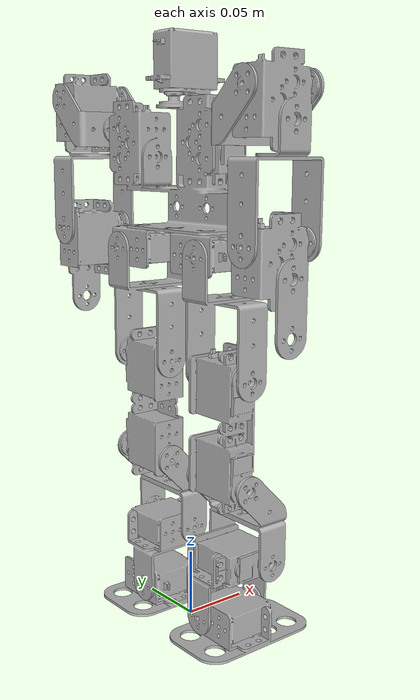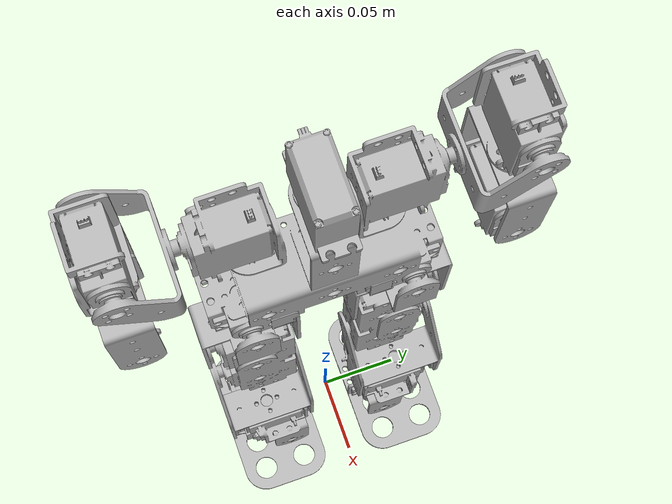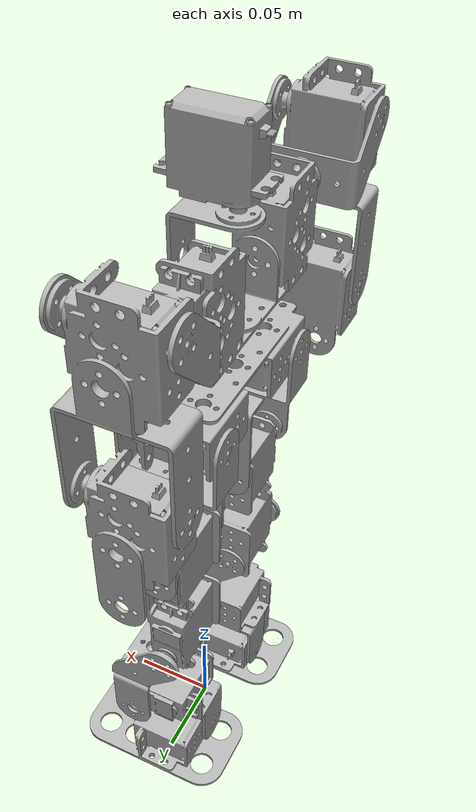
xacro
<?xml version="1.0" ?>
<robot name="humanoid" xmlns:xacro="http://www.ros.org/wiki/xacro">

<xacro:include filename="$(find humanoid_description)/urdf/materials.xacro" />
<xacro:include filename="$(find humanoid_description)/urdf/humanoid.trans" />
<xacro:include filename="$(find humanoid_description)/urdf/humanoid.gazebo" />
<link name="base_link">
  <inertial>
    <origin xyz="-0.012883479435964856 -0.0022883102773944906 0.3195103923670224" rpy="0 0 0"/>
    <mass value="0.49620714060674026"/>
    <inertia ixx="0.001376" iyy="0.000711" izz="0.000804" ixy="0.0" iyz="-0.0" ixz="6.9e-05"/>
  </inertial>
  <visual>
    <origin xyz="0 0 0" rpy="0 0 0"/>
    <geometry>
      <mesh filename="file://$(find humanoid_description)/meshes/base_link.stl" scale="0.001 0.001 0.001"/>
    </geometry>
    <material name="silver"/>
  </visual>
  <collision>
    <origin xyz="0 0 0" rpy="0 0 0"/>
    <geometry>
      <mesh filename="file://$(find humanoid_description)/meshes/base_link.stl" scale="0.001 0.001 0.001"/>
    </geometry>
  </collision>
</link>

<link name="L_hip_joint_1">
  <inertial>
    <origin xyz="0.02476294562748635 0.0007629287180515379 -0.03845870411401925" rpy="0 0 0"/>
    <mass value="0.043964600871803455"/>
    <inertia ixx="4.7e-05" iyy="4.3e-05" izz="2.7e-05" ixy="0.0" iyz="1e-06" ixz="-1e-06"/>
  </inertial>
  <visual>
    <origin xyz="0.03132 -0.041871 -0.280792" rpy="0 0 0"/>
    <geometry>
      <mesh filename="file://$(find humanoid_description)/meshes/L_hip_joint_1.stl" scale="0.001 0.001 0.001"/>
    </geometry>
    <material name="silver"/>
  </visual>
  <collision>
    <origin xyz="0.03132 -0.041871 -0.280792" rpy="0 0 0"/>
    <geometry>
      <mesh filename="file://$(find humanoid_description)/meshes/L_hip_joint_1.stl" scale="0.001 0.001 0.001"/>
    </geometry>
  </collision>
</link>

<link name="L_thigh_1">
  <inertial>
    <origin xyz="0.0020631851599692396 0.021610549494278094 -0.03835026650914522" rpy="0 0 0"/>
    <mass value="0.6278799138265152"/>
    <inertia ixx="0.00071" iyy="0.000648" izz="0.000122" ixy="1e-06" iyz="-0.0" ixz="0.0"/>
  </inertial>
  <visual>
    <origin xyz="0.00732 -0.017871 -0.197792" rpy="0 0 0"/>
    <geometry>
      <mesh filename="file://$(find humanoid_description)/meshes/L_thigh_1.stl" scale="0.001 0.001 0.001"/>
    </geometry>
    <material name="silver"/>
  </visual>
  <collision>
    <origin xyz="0.00732 -0.017871 -0.197792" rpy="0 0 0"/>
    <geometry>
      <mesh filename="file://$(find humanoid_description)/meshes/L_thigh_1.stl" scale="0.001 0.001 0.001"/>
    </geometry>
  </collision>
</link>

<link name="L_knee_1">
  <inertial>
    <origin xyz="0.01778979357133356 0.02573859555380659 -0.029178246058454205" rpy="0 0 0"/>
    <mass value="0.03721244648561897"/>
    <inertia ixx="3.4e-05" iyy="1.8e-05" izz="2.4e-05" ixy="0.0" iyz="0.0" ixz="4e-06"/>
  </inertial>
  <visual>
    <origin xyz="0.00732 -0.017871 -0.121009" rpy="0 0 0"/>
    <geometry>
      <mesh filename="file://$(find humanoid_description)/meshes/L_knee_1.stl" scale="0.001 0.001 0.001"/>
    </geometry>
    <material name="silver"/>
  </visual>
  <collision>
    <origin xyz="0.00732 -0.017871 -0.121009" rpy="0 0 0"/>
    <geometry>
      <mesh filename="file://$(find humanoid_description)/meshes/L_knee_1.stl" scale="0.001 0.001 0.001"/>
    </geometry>
  </collision>
</link>

<link name="L_ankle_pitch_1">
  <inertial>
    <origin xyz="-0.008957916317498007 0.020419475919971005 -0.005543744818484048" rpy="0 0 0"/>
    <mass value="0.3560292146171612"/>
    <inertia ixx="0.000105" iyy="0.00013" izz="0.000126" ixy="-0.0" iyz="-1e-05" ixz="3e-06"/>
  </inertial>
  <visual>
    <origin xyz="-0.014854 -0.017871 -0.061328" rpy="0 0 0"/>
    <geometry>
      <mesh filename="file://$(find humanoid_description)/meshes/L_ankle_pitch_1.stl" scale="0.001 0.001 0.001"/>
    </geometry>
    <material name="silver"/>
  </visual>
  <collision>
    <origin xyz="-0.014854 -0.017871 -0.061328" rpy="0 0 0"/>
    <geometry>
      <mesh filename="file://$(find humanoid_description)/meshes/L_ankle_pitch_1.stl" scale="0.001 0.001 0.001"/>
    </geometry>
  </collision>
</link>

<link name="L_ankle_roll_1">
  <inertial>
    <origin xyz="0.022510537177657726 0.009228652532095816 -0.00407575705258406" rpy="0 0 0"/>
    <mass value="0.37095119393642895"/>
    <inertia ixx="9e-05" iyy="0.000124" izz="0.000168" ixy="1e-06" iyz="0.0" ixz="3e-06"/>
  </inertial>
  <visual>
    <origin xyz="0.018537 -0.031871 -0.017141" rpy="0 0 0"/>
    <geometry>
      <mesh filename="file://$(find humanoid_description)/meshes/L_ankle_roll_1.stl" scale="0.001 0.001 0.001"/>
    </geometry>
    <material name="silver"/>
  </visual>
  <collision>
    <origin xyz="0.018537 -0.031871 -0.017141" rpy="0 0 0"/>
    <geometry>
      <mesh filename="file://$(find humanoid_description)/meshes/L_ankle_roll_1.stl" scale="0.001 0.001 0.001"/>
    </geometry>
  </collision>
</link>

<link name="R_hip_joint_1">
  <inertial>
    <origin xyz="0.024762945627578324 -0.000762795394638742 -0.03845870411416624" rpy="0 0 0"/>
    <mass value="0.1224728167143094"/>
    <inertia ixx="0.000131" iyy="0.000119" izz="7.5e-05" ixy="-0.0" iyz="-4e-06" ixz="-4e-06"/>
  </inertial>
  <visual>
    <origin xyz="0.03132 0.046412 -0.280792" rpy="0 0 0"/>
    <geometry>
      <mesh filename="file://$(find humanoid_description)/meshes/R_hip_joint_1.stl" scale="0.001 0.001 0.001"/>
    </geometry>
    <material name="silver"/>
  </visual>
  <collision>
    <origin xyz="0.03132 0.046412 -0.280792" rpy="0 0 0"/>
    <geometry>
      <mesh filename="file://$(find humanoid_description)/meshes/R_hip_joint_1.stl" scale="0.001 0.001 0.001"/>
    </geometry>
  </collision>
</link>

<link name="R_thigh_1">
  <inertial>
    <origin xyz="0.002063185159969369 -0.021610415517168198 -0.03843242882065484" rpy="0 0 0"/>
    <mass value="0.6278799138265153"/>
    <inertia ixx="0.00071" iyy="0.000648" izz="0.000122" ixy="-1e-06" iyz="-0.0" ixz="-0.0"/>
  </inertial>
  <visual>
    <origin xyz="0.00732 0.022412 -0.197792" rpy="0 0 0"/>
    <geometry>
      <mesh filename="file://$(find humanoid_description)/meshes/R_thigh_1.stl" scale="0.001 0.001 0.001"/>
    </geometry>
    <material name="silver"/>
  </visual>
  <collision>
    <origin xyz="0.00732 0.022412 -0.197792" rpy="0 0 0"/>
    <geometry>
      <mesh filename="file://$(find humanoid_description)/meshes/R_thigh_1.stl" scale="0.001 0.001 0.001"/>
    </geometry>
  </collision>
</link>

<link name="R_knee_1">
  <inertial>
    <origin xyz="0.017789793571273534 -0.02573846223038475 -0.029178246058392504" rpy="0 0 0"/>
    <mass value="0.03859068524434563"/>
    <inertia ixx="3.5e-05" iyy="1.8e-05" izz="2.5e-05" ixy="-0.0" iyz="-0.0" ixz="4e-06"/>
  </inertial>
  <visual>
    <origin xyz="0.00732 0.022412 -0.121009" rpy="0 0 0"/>
    <geometry>
      <mesh filename="file://$(find humanoid_description)/meshes/R_knee_1.stl" scale="0.001 0.001 0.001"/>
    </geometry>
    <material name="silver"/>
  </visual>
  <collision>
    <origin xyz="0.00732 0.022412 -0.121009" rpy="0 0 0"/>
    <geometry>
      <mesh filename="file://$(find humanoid_description)/meshes/R_knee_1.stl" scale="0.001 0.001 0.001"/>
    </geometry>
  </collision>
</link>

<link name="R_ankle_pitch_1">
  <inertial>
    <origin xyz="-0.008957916317495346 -0.020419342902477204 -0.005539333272074516" rpy="0 0 0"/>
    <mass value="0.35602921461716464"/>
    <inertia ixx="0.000105" iyy="0.00013" izz="0.000126" ixy="0.0" iyz="1e-05" ixz="3e-06"/>
  </inertial>
  <visual>
    <origin xyz="-0.014854 0.022412 -0.061328" rpy="0 0 0"/>
    <geometry>
      <mesh filename="file://$(find humanoid_description)/meshes/R_ankle_pitch_1.stl" scale="0.001 0.001 0.001"/>
    </geometry>
    <material name="silver"/>
  </visual>
  <collision>
    <origin xyz="-0.014854 0.022412 -0.061328" rpy="0 0 0"/>
    <geometry>
      <mesh filename="file://$(find humanoid_description)/meshes/R_ankle_pitch_1.stl" scale="0.001 0.001 0.001"/>
    </geometry>
  </collision>
</link>

<link name="R_ankle_roll_1">
  <inertial>
    <origin xyz="0.022510537177669827 -0.009228518658190743 -0.004076152987495269" rpy="0 0 0"/>
    <mass value="0.3709511939353679"/>
    <inertia ixx="9e-05" iyy="0.000124" izz="0.000168" ixy="-1e-06" iyz="-0.0" ixz="3e-06"/>
  </inertial>
  <visual>
    <origin xyz="0.018537 0.036412 -0.017141" rpy="0 0 0"/>
    <geometry>
      <mesh filename="file://$(find humanoid_description)/meshes/R_ankle_roll_1.stl" scale="0.001 0.001 0.001"/>
    </geometry>
    <material name="silver"/>
  </visual>
  <collision>
    <origin xyz="0.018537 0.036412 -0.017141" rpy="0 0 0"/>
    <geometry>
      <mesh filename="file://$(find humanoid_description)/meshes/R_ankle_roll_1.stl" scale="0.001 0.001 0.001"/>
    </geometry>
  </collision>
</link>

<link name="L_shoulder_joint_1">
  <inertial>
    <origin xyz="0.0015299174878798602 0.01478285543107169 0.007715270715101474" rpy="0 0 0"/>
    <mass value="0.021144305664436213"/>
    <inertia ixx="6e-06" iyy="1.3e-05" izz="1.4e-05" ixy="-1e-06" iyz="-2e-06" ixz="-0.0"/>
  </inertial>
  <visual>
    <origin xyz="0.017934 -0.06728 -0.365021" rpy="0 0 0"/>
    <geometry>
      <mesh filename="file://$(find humanoid_description)/meshes/L_shoulder_joint_1.stl" scale="0.001 0.001 0.001"/>
    </geometry>
    <material name="silver"/>
  </visual>
  <collision>
    <origin xyz="0.017934 -0.06728 -0.365021" rpy="0 0 0"/>
    <geometry>
      <mesh filename="file://$(find humanoid_description)/meshes/L_shoulder_joint_1.stl" scale="0.001 0.001 0.001"/>
    </geometry>
  </collision>
</link>

<link name="L_upperarm_1">
  <inertial>
    <origin xyz="0.022436519365852024 0.0017478415011937254 -0.02062009535457715" rpy="0 0 0"/>
    <mass value="0.39400171797745537"/>
    <inertia ixx="0.000293" iyy="0.000363" izz="0.000109" ixy="1e-06" iyz="-4e-06" ixz="1.7e-05"/>
  </inertial>
  <visual>
    <origin xyz="0.041934 -0.098961 -0.387195" rpy="0 0 0"/>
    <geometry>
      <mesh filename="file://$(find humanoid_description)/meshes/L_upperarm_1.stl" scale="0.001 0.001 0.001"/>
    </geometry>
    <material name="silver"/>
  </visual>
  <collision>
    <origin xyz="0.041934 -0.098961 -0.387195" rpy="0 0 0"/>
    <geometry>
      <mesh filename="file://$(find humanoid_description)/meshes/L_upperarm_1.stl" scale="0.001 0.001 0.001"/>
    </geometry>
  </collision>
</link>

<link name="L_forearm_1">
  <inertial>
    <origin xyz="0.021698764719735014 0.0024589629396612606 -0.010974756579181455" rpy="0 0 0"/>
    <mass value="0.3238214913391936"/>
    <inertia ixx="8.6e-05" iyy="0.000116" izz="6.3e-05" ixy="-0.0" iyz="7e-06" ixz="1e-06"/>
  </inertial>
  <visual>
    <origin xyz="0.041434 -0.099148 -0.292803" rpy="0 0 0"/>
    <geometry>
      <mesh filename="file://$(find humanoid_description)/meshes/L_forearm_1.stl" scale="0.001 0.001 0.001"/>
    </geometry>
    <material name="silver"/>
  </visual>
  <collision>
    <origin xyz="0.041434 -0.099148 -0.292803" rpy="0 0 0"/>
    <geometry>
      <mesh filename="file://$(find humanoid_description)/meshes/L_forearm_1.stl" scale="0.001 0.001 0.001"/>
    </geometry>
  </collision>
</link>

<link name="R_shoulder_joint_1">
  <inertial>
    <origin xyz="0.001530575565089766 -0.014783722107877845 0.007715270714952593" rpy="0 0 0"/>
    <mass value="0.021144305664436244"/>
    <inertia ixx="6e-06" iyy="1.3e-05" izz="1.4e-05" ixy="1e-06" iyz="2e-06" ixz="-0.0"/>
  </inertial>
  <visual>
    <origin xyz="0.017928 0.07182 -0.365021" rpy="0 0 0"/>
    <geometry>
      <mesh filename="file://$(find humanoid_description)/meshes/R_shoulder_joint_1.stl" scale="0.001 0.001 0.001"/>
    </geometry>
    <material name="silver"/>
  </visual>
  <collision>
    <origin xyz="0.017928 0.07182 -0.365021" rpy="0 0 0"/>
    <geometry>
      <mesh filename="file://$(find humanoid_description)/meshes/R_shoulder_joint_1.stl" scale="0.001 0.001 0.001"/>
    </geometry>
  </collision>
</link>

<link name="R_upperarm_1">
  <inertial>
    <origin xyz="0.022437177458494186 -0.0017516937321476328 -0.020620095395556093" rpy="0 0 0"/>
    <mass value="0.39400171893460806"/>
    <inertia ixx="0.000293" iyy="0.000363" izz="0.000109" ixy="-1e-06" iyz="4e-06" ixz="1.7e-05"/>
  </inertial>
  <visual>
    <origin xyz="0.041928 0.103502 -0.387195" rpy="0 0 0"/>
    <geometry>
      <mesh filename="file://$(find humanoid_description)/meshes/R_upperarm_1.stl" scale="0.001 0.001 0.001"/>
    </geometry>
    <material name="silver"/>
  </visual>
  <collision>
    <origin xyz="0.041928 0.103502 -0.387195" rpy="0 0 0"/>
    <geometry>
      <mesh filename="file://$(find humanoid_description)/meshes/R_upperarm_1.stl" scale="0.001 0.001 0.001"/>
    </geometry>
  </collision>
</link>

<link name="R_forearm_1">
  <inertial>
    <origin xyz="0.02169942279604719 -0.0024636789234836892 -0.010974756579181955" rpy="0 0 0"/>
    <mass value="0.32382149133918564"/>
    <inertia ixx="8.6e-05" iyy="0.000116" izz="6.3e-05" ixy="0.0" iyz="-7e-06" ixz="1e-06"/>
  </inertial>
  <visual>
    <origin xyz="0.041428 0.103689 -0.292803" rpy="0 0 0"/>
    <geometry>
      <mesh filename="file://$(find humanoid_description)/meshes/R_forearm_1.stl" scale="0.001 0.001 0.001"/>
    </geometry>
    <material name="silver"/>
  </visual>
  <collision>
    <origin xyz="0.041428 0.103689 -0.292803" rpy="0 0 0"/>
    <geometry>
      <mesh filename="file://$(find humanoid_description)/meshes/R_forearm_1.stl" scale="0.001 0.001 0.001"/>
    </geometry>
  </collision>
</link>

<link name="Head_1">
  <inertial>
    <origin xyz="0.009916301072321384 2.611393220511727e-06 0.02595144565080304" rpy="0 0 0"/>
    <mass value="0.2579403843929263"/>
    <inertia ixx="4.3e-05" iyy="7.1e-05" izz="4.4e-05" ixy="-0.0" iyz="0.0" ixz="-1e-06"/>
  </inertial>
  <visual>
    <origin xyz="0.01732 0.00227 -0.381979" rpy="0 0 0"/>
    <geometry>
      <mesh filename="file://$(find humanoid_description)/meshes/Head_1.stl" scale="0.001 0.001 0.001"/>
    </geometry>
    <material name="silver"/>
  </visual>
  <collision>
    <origin xyz="0.01732 0.00227 -0.381979" rpy="0 0 0"/>
    <geometry>
      <mesh filename="file://$(find humanoid_description)/meshes/Head_1.stl" scale="0.001 0.001 0.001"/>
    </geometry>
  </collision>
</link>

<joint name="L_hip_joint" type="revolute">
  <origin xyz="-0.03132 0.041871 0.280792" rpy="0 0 0"/>
  <parent link="base_link"/>
  <child link="L_hip_joint_1"/>
  <axis xyz="-1.0 -0.0 -0.0"/>
  <limit upper="0.523599" lower="-1.570796" effort="100" velocity="100"/>
  <ros2_control>
    <hardware_interface>hardware_interface/PositionJointInterface</hardware_interface>
  </ros2_control>
</joint>

<joint name="L_thigh" type="revolute">
  <origin xyz="0.024 -0.024 -0.083" rpy="0 0 0"/>
  <parent link="L_hip_joint_1"/>
  <child link="L_thigh_1"/>
  <axis xyz="0.0 -1.0 -0.0"/>
  <limit upper="2.356194" lower="-2.356194" effort="100" velocity="100"/>
</joint>

<joint name="L_knee" type="revolute">
  <origin xyz="0.0 0.0 -0.076783" rpy="0 0 0"/>
  <parent link="L_thigh_1"/>
  <child link="L_knee_1"/>
  <axis xyz="0.0 -1.0 -0.0"/>
  <limit upper="1.570796" lower="-2.356194" effort="100" velocity="100"/>
  <ros2_control>
    <hardware_interface>hardware_interface/PositionJointInterface</hardware_interface>
  </ros2_control>
</joint>

<joint name="L_ankle_pitch" type="revolute">
  <origin xyz="0.022174 0.0 -0.059681" rpy="0 0 0"/>
  <parent link="L_knee_1"/>
  <child link="L_ankle_pitch_1"/>
  <axis xyz="-0.0 -1.0 0.0"/>
  <limit upper="1.570796" lower="-0.698132" effort="100" velocity="100"/>
  <ros2_control>
    <hardware_interface>hardware_interface/PositionJointInterface</hardware_interface>
  </ros2_control>
</joint>

<joint name="L_ankle_roll" type="revolute">
  <origin xyz="-0.033391 0.014 -0.044187" rpy="0 0 0"/>
  <parent link="L_ankle_pitch_1"/>
  <child link="L_ankle_roll_1"/>
  <axis xyz="-1.0 -0.0 -0.0"/>
  <limit upper="1.570796" lower="-0.523599" effort="100" velocity="100"/>
  <ros2_control>
    <hardware_interface>hardware_interface/PositionJointInterface</hardware_interface>
  </ros2_control>
</joint>

<joint name="R_hip_joint" type="revolute">
  <origin xyz="-0.03132 -0.046412 0.280792" rpy="0 0 0"/>
  <parent link="base_link"/>
  <child link="R_hip_joint_1"/>
  <axis xyz="-1.0 -0.0 -0.0"/>
  <limit upper="1.570796" lower="-0.523599" effort="100" velocity="100"/>
  <ros2_control>
    <hardware_interface>hardware_interface/PositionJointInterface</hardware_interface>
  </ros2_control>
</joint>

<joint name="R_thigh" type="revolute">
  <origin xyz="0.024 0.024 -0.083" rpy="0 0 0"/>
  <parent link="R_hip_joint_1"/>
  <child link="R_thigh_1"/>
  <axis xyz="-0.0 1.0 0.0"/>
  <limit upper="2.356194" lower="-2.356194" effort="100" velocity="100"/>
  <ros2_control>
    <hardware_interface>hardware_interface/PositionJointInterface</hardware_interface>
  </ros2_control>
</joint>

<joint name="R_knee" type="revolute">
  <origin xyz="0.0 0.0 -0.076783" rpy="0 0 0"/>
  <parent link="R_thigh_1"/>
  <child link="R_knee_1"/>
  <axis xyz="0.0 1.0 0.0"/>
  <limit upper="2.356194" lower="-1.570796" effort="100" velocity="100"/>
  <ros2_control>
    <hardware_interface>hardware_interface/PositionJointInterface</hardware_interface>
  </ros2_control>
</joint>

<joint name="R_ankle_pitch" type="revolute">
  <origin xyz="0.022174 0.0 -0.059681" rpy="0 0 0"/>
  <parent link="R_knee_1"/>
  <child link="R_ankle_pitch_1"/>
  <axis xyz="-0.0 1.0 0.0"/>
  <limit upper="0.698132" lower="-1.570796" effort="100" velocity="100"/>
  <ros2_control>
    <hardware_interface>hardware_interface/PositionJointInterface</hardware_interface>
  </ros2_control>
</joint>

<joint name="R_ankle_roll" type="revolute">
  <origin xyz="-0.033391 -0.014 -0.044187" rpy="0 0 0"/>
  <parent link="R_ankle_pitch_1"/>
  <child link="R_ankle_roll_1"/>
  <axis xyz="-1.0 -0.0 -0.0"/>
  <limit upper="0.523599" lower="-1.570796" effort="100" velocity="100"/>
  <ros2_control>
    <hardware_interface>hardware_interface/PositionJointInterface</hardware_interface>
  </ros2_control>
</joint>

<joint name="L_shoulder_joint" type="revolute">
  <origin xyz="-0.017934 0.06728 0.365021" rpy="0 0 0"/>
  <parent link="base_link"/>
  <child link="L_shoulder_joint_1"/>
  <axis xyz="-0.0 1.0 0.0"/>
  <limit upper="3.141593" lower="-3.141593" effort="100" velocity="100"/>
  <ros2_control>
    <hardware_interface>hardware_interface/PositionJointInterface</hardware_interface>
  </ros2_control>
</joint>

<joint name="L_upperarm" type="revolute">
  <origin xyz="-0.024 0.031681 0.022174" rpy="0 0 0"/>
  <parent link="L_shoulder_joint_1"/>
  <child link="L_upperarm_1"/>
  <axis xyz="-1.0 -0.0 0.0"/>
  <limit upper="0.174533" lower="-3.752458" effort="100" velocity="100"/>
  <ros2_control>
    <hardware_interface>hardware_interface/PositionJointInterface</hardware_interface>
  </ros2_control>
</joint>

<joint name="L_forearm" type="revolute">
  <origin xyz="0.0005 0.000187 -0.094392" rpy="0 0 0"/>
  <parent link="L_upperarm_1"/>
  <child link="L_forearm_1"/>
  <axis xyz="-1.0 0.0 0.0"/>
  <limit upper="3.141593" lower="-2.443461" effort="100" velocity="100"/>
  <ros2_control>
    <hardware_interface>hardware_interface/PositionJointInterface</hardware_interface>
  </ros2_control>
</joint>

<joint name="R_shoulder_joint" type="revolute">
  <origin xyz="-0.017928 -0.07182 0.365021" rpy="0 0 0"/>
  <parent link="base_link"/>
  <child link="R_shoulder_joint_1"/>
  <axis xyz="0.0 -1.0 0.0"/>
  <limit upper="3.141593" lower="-3.141593" effort="100" velocity="100"/>
  <ros2_control>
    <hardware_interface>hardware_interface/PositionJointInterface</hardware_interface>
  </ros2_control>
</joint>

<joint name="R_upperarm" type="revolute">
  <origin xyz="-0.024 -0.031682 0.022174" rpy="0 0 0"/>
  <parent link="R_shoulder_joint_1"/>
  <child link="R_upperarm_1"/>
  <axis xyz="-1.0 -0.0 -0.0"/>
  <limit upper="3.752458" lower="-0.174533" effort="100" velocity="100"/>
  <ros2_control>
    <hardware_interface>hardware_interface/PositionJointInterface</hardware_interface>
  </ros2_control>
</joint>

<joint name="R_forearm" type="revolute">
  <origin xyz="0.0005 -0.000187 -0.094392" rpy="0 0 0"/>
  <parent link="R_upperarm_1"/>
  <child link="R_forearm_1"/>
  <axis xyz="-1.0 0.0 -0.0"/>
  <limit upper="2.443461" lower="-3.141593" effort="100" velocity="100"/>
  <ros2_control>
    <hardware_interface>hardware_interface/PositionJointInterface</hardware_interface>
  </ros2_control>
</joint>

<joint name="Head" type="revolute">
  <origin xyz="-0.01732 -0.00227 0.381979" rpy="0 0 0"/>
  <parent link="base_link"/>
  <child link="Head_1"/>
  <axis xyz="0.0 -0.0 1.0"/>
  <limit upper="2.356194" lower="-2.356194" effort="100" velocity="100"/>
  <ros2_control>
    <hardware_interface>hardware_interface/PositionJointInterface</hardware_interface>
  </ros2_control>
</joint>

</robot>

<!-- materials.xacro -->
<robot name="humanoid" xmlns:xacro="http://www.ros.org/wiki/xacro" >

<material name="silver">
  <color rgba="0.700 0.700 0.700 1.000"/>
</material>

</robot>

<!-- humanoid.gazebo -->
<robot name="humanoid" xmlns:xacro="http://www.ros.org/wiki/xacro" >

<xacro:property name="body_color" value="Gazebo/Silver" />

<gazebo>
  <plugin name="control" filename="libgazebo_ros_control.so"/>
</gazebo>
<gazebo reference="base_link">
  <material>${body_color}</material>
  <mu1>0.2</mu1>
  <mu2>0.2</mu2>
  <self_collide>true</self_collide>
  <gravity>true</gravity>
</gazebo>

<gazebo reference="L_hip_joint_1">
  <material>${body_color}</material>
  <mu1>0.2</mu1>
  <mu2>0.2</mu2>
  <self_collide>true</self_collide>
</gazebo>

<gazebo reference="L_thigh_1">
  <material>${body_color}</material>
  <mu1>0.2</mu1>
  <mu2>0.2</mu2>
  <self_collide>true</self_collide>
</gazebo>

<gazebo reference="L_knee_1">
  <material>${body_color}</material>
  <mu1>0.2</mu1>
  <mu2>0.2</mu2>
  <self_collide>true</self_collide>
</gazebo>

<gazebo reference="L_ankle_pitch_1">
  <material>${body_color}</material>
  <mu1>0.2</mu1>
  <mu2>0.2</mu2>
  <self_collide>true</self_collide>
</gazebo>

<gazebo reference="L_ankle_roll_1">
  <material>${body_color}</material>
  <mu1>0.2</mu1>
  <mu2>0.2</mu2>
  <self_collide>true</self_collide>
</gazebo>

<gazebo reference="R_hip_joint_1">
  <material>${body_color}</material>
  <mu1>0.2</mu1>
  <mu2>0.2</mu2>
  <self_collide>true</self_collide>
</gazebo>

<gazebo reference="R_thigh_1">
  <material>${body_color}</material>
  <mu1>0.2</mu1>
  <mu2>0.2</mu2>
  <self_collide>true</self_collide>
</gazebo>

<gazebo reference="R_knee_1">
  <material>${body_color}</material>
  <mu1>0.2</mu1>
  <mu2>0.2</mu2>
  <self_collide>true</self_collide>
</gazebo>

<gazebo reference="R_ankle_pitch_1">
  <material>${body_color}</material>
  <mu1>0.2</mu1>
  <mu2>0.2</mu2>
  <self_collide>true</self_collide>
</gazebo>

<gazebo reference="R_ankle_roll_1">
  <material>${body_color}</material>
  <mu1>0.2</mu1>
  <mu2>0.2</mu2>
  <self_collide>true</self_collide>
</gazebo>

<gazebo reference="L_shoulder_joint_1">
  <material>${body_color}</material>
  <mu1>0.2</mu1>
  <mu2>0.2</mu2>
  <self_collide>true</self_collide>
</gazebo>

<gazebo reference="L_upperarm_1">
  <material>${body_color}</material>
  <mu1>0.2</mu1>
  <mu2>0.2</mu2>
  <self_collide>true</self_collide>
</gazebo>

<gazebo reference="L_forearm_1">
  <material>${body_color}</material>
  <mu1>0.2</mu1>
  <mu2>0.2</mu2>
  <self_collide>true</self_collide>
</gazebo>

<gazebo reference="R_shoulder_joint_1">
  <material>${body_color}</material>
  <mu1>0.2</mu1>
  <mu2>0.2</mu2>
  <self_collide>true</self_collide>
</gazebo>

<gazebo reference="R_upperarm_1">
  <material>${body_color}</material>
  <mu1>0.2</mu1>
  <mu2>0.2</mu2>
  <self_collide>true</self_collide>
</gazebo>

<gazebo reference="R_forearm_1">
  <material>${body_color}</material>
  <mu1>0.2</mu1>
  <mu2>0.2</mu2>
  <self_collide>true</self_collide>
</gazebo>

<gazebo reference="Head_1">
  <material>${body_color}</material>
  <mu1>0.2</mu1>
  <mu2>0.2</mu2>
  <self_collide>true</self_collide>
</gazebo>

</robot>
